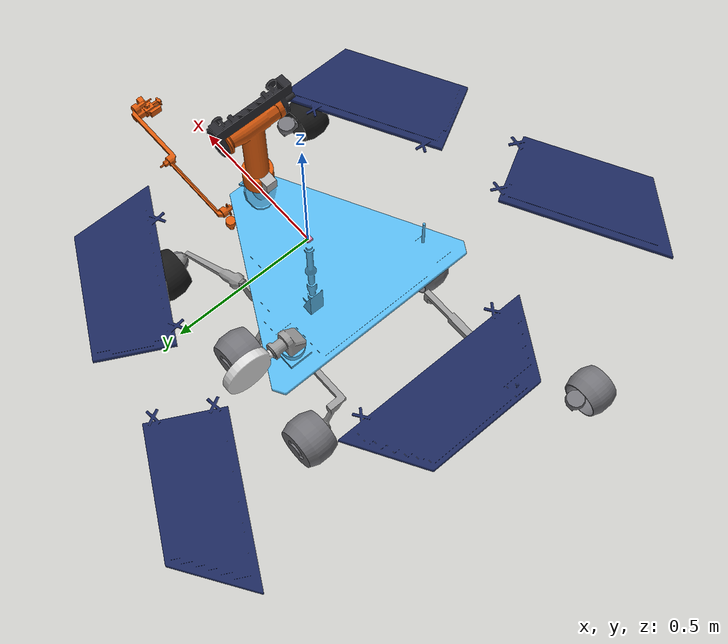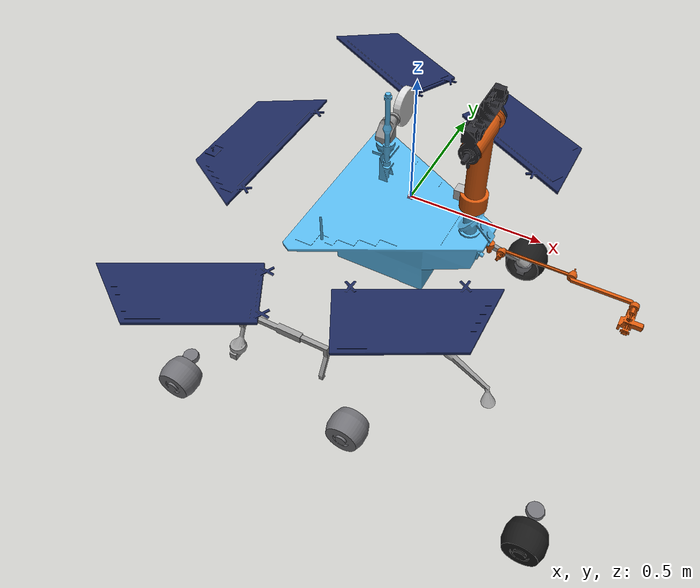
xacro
<?xml version="1.0"?>
<robot xmlns:xacro="http://ros.org/wiki/xacro"
       name="mars_opportunity_rover">

  <xacro:include filename="$(find rover_description)/urdf/common.xacro"/>

  <!-- Global Parameters -->

  <xacro:property name="scale_x"  value="0.68"/>
  <xacro:property name="scale_y"  value="0.68"/>
  <xacro:property name="scale_z"  value="0.68"/>

  <!-- ================= Mesh Path Parameters ================== -->

  <xacro:property name="body_box" value="package://rover_description/meshes/body_box.stl"/>

  <xacro:property name="head_j2" value="package://rover_description/meshes/head_j2.stl"/>
  <xacro:property name="head_j3" value="package://rover_description/meshes/head_j3.stl"/>

  <xacro:property name="front_left_panel" value="package://rover_description/meshes/front_left_panel.stl"/>
  <xacro:property name="rear_left_panel" value="package://rover_description/meshes/rear_left_panel.stl"/>
  <xacro:property name="front_right_panel" value="package://rover_description/meshes/front_right_panel.stl"/>
  <xacro:property name="rear_right_panel" value="package://rover_description/meshes/rear_right_panel.stl"/>
  <xacro:property name="rear_middle_panel" value="package://rover_description/meshes/rear_middle_panel.stl"/>

  <xacro:property name="arm_j1"  value="package://rover_description/meshes/arm_j1.stl"/>
  <xacro:property name="arm_j2"  value="package://rover_description/meshes/arm_j2.stl"/>
  <xacro:property name="arm_j3"  value="package://rover_description/meshes/arm_j3.stl"/>
  <xacro:property name="arm_j4"  value="package://rover_description/meshes/arm_j4.stl"/>
  <xacro:property name="arm_j5"  value="package://rover_description/meshes/arm_j5.stl"/>

  <xacro:property name="left_differential"  value="package://rover_description/meshes/left_differential.stl"/>
  <xacro:property name="left_bogie"  value="package://rover_description/meshes/left_bogie.stl"/>
  <xacro:property name="front_left_steering"  value="package://rover_description/meshes/front_left_steering.stl"/>
  <xacro:property name="front_left_wheel"  value="package://rover_description/meshes/front_left_wheel.stl"/>
  <xacro:property name="middle_left_wheel"  value="package://rover_description/meshes/middle_left_wheel.stl"/>
  <xacro:property name="rear_left_steering"  value="package://rover_description/meshes/rear_left_steering.stl"/>
  <xacro:property name="rear_left_wheel"  value="package://rover_description/meshes/rear_left_wheel.stl"/>

  <xacro:property name="right_differential"  value="package://rover_description/meshes/right_differential.stl"/>
  <xacro:property name="right_bogie"  value="package://rover_description/meshes/right_bogie.stl"/>
  <xacro:property name="front_right_steering"  value="package://rover_description/meshes/front_right_steering.stl"/>
  <xacro:property name="front_right_wheel"  value="package://rover_description/meshes/front_right_wheel.stl"/>
  <xacro:property name="middle_right_wheel"  value="package://rover_description/meshes/middle_right_wheel.stl"/>
  <xacro:property name="rear_right_steering"  value="package://rover_description/meshes/rear_right_steering.stl"/>
  <xacro:property name="rear_right_wheel"  value="package://rover_description/meshes/rear_right_wheel.stl"/>

  <xacro:property name="ant_j1"  value="package://rover_description/meshes/ant_j1.stl"/>
  <xacro:property name="ant_j2"  value="package://rover_description/meshes/ant_j2.stl"/>

  <!-- Misc -->
  <xacro:property name="encoder_cpr" value="1024"/>  <!-- counts per rev -->
  <xacro:property name="wheel_inertia" value="0.02"/>

  <!-- ===================== MATERIALS ===================== -->
  <!-- Original 3 -->
  <material name="grey"><color rgba="0.6 0.6 0.6 1.0"/></material>
  <material name="black"><color rgba="0.1 0.1 0.1 1.0"/></material>
  <material name="blue"><color rgba="0.1 0.1 0.8 1.0"/></material>

  <material name="arm_material"><color rgba="0.85 0.35 0.05 1.0"/></material>
  <material name="head_top_material"><color rgba="0.15 0.15 0.17 1.0"/></material>
  <material name="group_left_chassis_material"><color rgba="0.6 0.6 0.6 1.0"/></material>
  <material name="group_left_front_steering_material"><color rgba="0.45 0.45 0.47 1.0"/></material>
  <material name="group_left_wheel_material"><color rgba="0.1 0.1 0.1 1.0"/></material>
  <material name="left_bogie_material"><color rgba="0.6 0.6 0.6 1.0"/></material>
  <material name="group_left_middle_chariot_center_material"><color rgba="0.45 0.45 0.47 1.0"/></material>
  <material name="group_right_chassis_material"><color rgba="0.6 0.6 0.6 1.0"/></material>
  <material name="group_right_front_steering_material"><color rgba="0.45 0.45 0.47 1.0"/></material>
  <material name="group_right_wheel_material"><color rgba="0.1 0.1 0.1 1.0"/></material>
  <material name="right_bogie_material"><color rgba="0.6 0.6 0.6 1.0"/></material>
  <material name="group_right_middle_chariot_center_material"><color rgba="0.45 0.45 0.47 1.0"/></material>
  <material name="solar_panel_material"><color rgba="0.1 0.15 0.35 1.0"/></material>
  <material name="antenna_base_material"><color rgba="0.6 0.6 0.6 1.0"/></material>
  <material name="antenna_hg_material"><color rgba="0.85 0.85 0.85 1.0"/></material>

  <!-- Base Chassis with Mesh -->
  <link name="base_link"/>

  <joint name="base_to_body_box" type="fixed">
    <parent link="base_link"/>
    <child  link="body_box_link"/>
    <origin xyz="0 0 0" rpy="0 0 0"/>
  </joint>

  <link name="body_box_link">
    <visual>
      <origin xyz="0 0 0" rpy="0 0 0"/>
      <geometry>
        <mesh filename="${body_box}" scale="${scale_x} ${scale_y} ${scale_z}"/>
      </geometry>
    </visual>
    <collision>
      <origin xyz="0 0 0" rpy="0 0 0"/>
      <geometry><mesh filename="${body_box}"/></geometry>
    </collision>
    <inertial>
      <!-- Bounding-box approximation (mesh's real inertia depends on
           its actual shape, unknown until the mesh is supplied) -
           see common.xacro's box_inertia macro. -->
      <origin xyz="0 0 0"/>
      <mass value="14.0"/>
      <xacro:box_inertia mass="14.0" x="0.62" y="0.36" z="0.16"/>
    </inertial>
  </link>

  <!-- Head with Mesh -->

  <joint name="head_j2_joint" type="revolute">
    <parent link="body_box_link"/>
    <child  link="head_j2_link"/>
    <origin xyz="0.24 0 0" rpy="0 0 0"/>
    <axis xyz="0 0 1"/>
    <limit lower="-1.0" upper="1.0" effort="10" velocity="1.0"/>
  </joint>

  <transmission name="head_j2_transmission">
    <type>transmission_interface/SimpleTransmission</type>
    <joint name="head_j2_joint">
      <hardwareInterface>hardware_interface/PositionJointInterface</hardwareInterface>
    </joint>
    <actuator name="head_j2_motor">
      <hardwareInterface>hardware_interface/PositionJointInterface</hardwareInterface>
      <mechanicalReduction>1</mechanicalReduction>
    </actuator>
  </transmission>

  <link name="head_j2_link">
    <visual>
      <origin xyz="-0.24 0 0" rpy="0 0 0"/>
      <geometry>
        <mesh filename="${head_j2}" scale="${scale_x} ${scale_y} ${scale_z}"/>
      </geometry>
      <material name="arm_material"/>
    </visual>
    <collision>
      <origin xyz="0 0 0" rpy="0 0 0"/>
      <geometry><mesh filename="${head_j2}"/></geometry>
    </collision>
    <inertial>
      <mass value="0.3"/>
      <xacro:box_inertia mass="0.3" x="0.08" y="0.08" z="0.08"/>
    </inertial>
  </link>

  <joint name="head_j3_joint" type="revolute">
    <parent link="head_j2_link"/>
    <child  link="head_j3_link"/>
    <origin xyz="0 0 0.37" rpy="0 0 0"/>
    <axis xyz="0 1 0"/>
    <limit lower="-1.0" upper="1.0" effort="4" velocity="1.0"/>
  </joint>

  <transmission name="head_j3_transmission">
    <type>transmission_interface/SimpleTransmission</type>
    <joint name="head_j3_joint">
      <hardwareInterface>hardware_interface/PositionJointInterface</hardwareInterface>
    </joint>
    <actuator name="head_j3_motor">
      <hardwareInterface>hardware_interface/PositionJointInterface</hardwareInterface>
      <mechanicalReduction>1</mechanicalReduction>
    </actuator>
  </transmission>

  <link name="head_j3_link">
    <visual>
      <origin xyz="-0.24 0 -0.37" rpy="0 0 0"/>
      <geometry>
        <mesh filename="${head_j3}" scale="${scale_x} ${scale_y} ${scale_z}"/>
      </geometry>
      <material name="head_top_material"/>
    </visual>
    <collision>
      <origin xyz="0 0 0" rpy="0 0 0"/>
      <geometry><mesh filename="${head_j3}"/></geometry>
    </collision>
    <inertial>
      <mass value="0.2"/>
      <xacro:box_inertia mass="0.2" x="0.06" y="0.06" z="0.06"/>
    </inertial>
  </link>

  <!-- Group Differential Steering Wheels Left with Mesh -->

  <joint name="left_differential_joint" type="revolute">
    <parent link="body_box_link"/>
    <child  link="left_differential_link"/>
    <origin xyz="0.09 0 -0.265" rpy="0 0 0"/>
    <axis xyz="0 1 0"/>
    <limit lower="-0.2" upper="0.2" effort="10" velocity="1.0"/>
  </joint>

  <link name="left_differential_link">
    <visual>
      <origin xyz="-0.09 0 0.265" rpy="0 0 0"/>
      <geometry>
        <mesh filename="${left_differential}" scale="${scale_x} ${scale_y} ${scale_z}"/>
      </geometry>
      <material name="group_left_chassis_material"/>
    </visual>
    <collision>
      <origin xyz="0 0 0" rpy="0 0 0"/>
      <geometry><mesh filename="${left_differential}"/></geometry>
    </collision>
    <inertial>
      <mass value="0.5"/>
      <xacro:box_inertia mass="0.5" x="0.1" y="0.1" z="0.1"/>
    </inertial>
  </link>

  <joint name="front_left_steering_joint" type="revolute">
    <parent link="left_differential_link"/>
    <child  link="front_left_steering_link"/>
    <origin xyz="0.315 0.26 -0.14" rpy="0 0 0"/>
    <axis xyz="0 0 1"/>
    <limit lower="-0.3" upper="0.3" effort="10" velocity="1.0"/>
  </joint>

  <transmission name="front_left_steering_transmission">
    <type>transmission_interface/SimpleTransmission</type>
    <joint name="front_left_steering_joint">
      <hardwareInterface>hardware_interface/PositionJointInterface</hardwareInterface>
    </joint>
    <actuator name="front_left_steering_motor">
      <hardwareInterface>hardware_interface/PositionJointInterface</hardwareInterface>
      <mechanicalReduction>1</mechanicalReduction>
    </actuator>
  </transmission>

  <link name="front_left_steering_link">
    <visual>
      <origin xyz="-0.402 -0.258 0.404" rpy="0 0 0"/>
      <geometry>
        <mesh filename="${front_left_steering}" scale="${scale_x} ${scale_y} ${scale_z}"/>
      </geometry>
      <material name="group_left_front_steering_material"/>
    </visual>
    <collision>
      <origin xyz="0 0 0" rpy="0 0 0"/>
      <geometry><mesh filename="${front_left_steering}"/></geometry>
    </collision>
    <inertial>
      <mass value="0.3"/>
      <xacro:box_inertia mass="0.3" x="0.06" y="0.06" z="0.06"/>
    </inertial>
  </link>

  <joint name="front_left_wheel_joint" type="continuous">
    <parent link="front_left_steering_link"/>
    <child  link="front_left_wheel_link"/>
    <origin xyz="0 0.045 -0.033" rpy="0 0 0"/>
    <axis xyz="0 1 0"/>
  </joint>

  <transmission name="front_left_wheel_transmission">
    <type>transmission_interface/SimpleTransmission</type>
    <joint name="front_left_wheel_joint">
      <hardwareInterface>hardware_interface/PositionJointInterface</hardwareInterface>
    </joint>
    <actuator name="front_left_wheel_motor">
      <hardwareInterface>hardware_interface/PositionJointInterface</hardwareInterface>
      <mechanicalReduction>1</mechanicalReduction>
    </actuator>
  </transmission>

  <link name="front_left_wheel_link">
    <visual>
      <origin xyz="-0.409 -0.3 0.433" rpy="0 0 0"/>
      <geometry>
        <mesh filename="${front_left_wheel}" scale="${scale_x} ${scale_y} ${scale_z}"/>
      </geometry>
      <material name="group_left_wheel_material"/>
    </visual>
    <collision>
      <origin xyz="0 0 0" rpy="0 0 0"/>
      <geometry><mesh filename="${front_left_wheel}"/></geometry>
    </collision>
    <inertial>
      <mass value="1.1"/>
      <xacro:cylinder_inertia mass="1.1" radius="0.09" length="0.06"/>
    </inertial>
  </link>

  <joint name="left_bogie_joint" type="revolute">
    <parent link="left_differential_link"/>
    <child  link="left_bogie_link"/>
    <origin xyz="-0.265 0.195 -0.041" rpy="0 0 0"/>
    <axis xyz="0 1 0"/>
    <limit lower="-0.3" upper="0.3" effort="10" velocity="1.0"/>
  </joint>

  <transmission name="left_bogie_transmission">
    <type>transmission_interface/SimpleTransmission</type>
    <joint name="left_bogie_joint">
      <hardwareInterface>hardware_interface/PositionJointInterface</hardwareInterface>
    </joint>
    <actuator name="left_bogie_motor">
      <hardwareInterface>hardware_interface/PositionJointInterface</hardwareInterface>
      <mechanicalReduction>1</mechanicalReduction>
    </actuator>
  </transmission>

  <link name="left_bogie_link">
    <visual>
      <origin xyz="0.175 -0.190 0.308" rpy="0 0 0"/>
      <geometry>
        <mesh filename="${left_bogie}" scale="${scale_x} ${scale_y} ${scale_z}"/>
      </geometry>
      <material name="left_bogie_material"/>
    </visual>
    <collision>
      <origin xyz="0 0 0" rpy="0 0 0"/>
      <geometry><mesh filename="${left_bogie}"/></geometry>
    </collision>
    <inertial>
      <mass value="0.6"/>
      <xacro:box_inertia mass="0.6" x="0.15" y="0.08" z="0.08"/>
    </inertial>
  </link>

  <joint name="middle_left_wheel_joint" type="continuous">
    <parent link="left_bogie_link"/>
    <child  link="middle_left_wheel_link"/>
    <origin xyz="0.178 0.06 -0.13" rpy="0 0 0"/>
    <axis xyz="0 1 0"/>
  </joint>

  <transmission name="middle_left_wheel_transmission">
    <type>transmission_interface/SimpleTransmission</type>
    <joint name="middle_left_wheel_joint">
      <hardwareInterface>hardware_interface/PositionJointInterface</hardwareInterface>
    </joint>
    <actuator name="middle_left_wheel_motor">
      <hardwareInterface>hardware_interface/PositionJointInterface</hardwareInterface>
      <mechanicalReduction>1</mechanicalReduction>
    </actuator>
  </transmission>

  <link name="middle_left_wheel_link">
    <visual>
      <origin xyz="0 -0.22 0.435" rpy="0 0 0"/>
      <geometry>
        <mesh filename="${middle_left_wheel}" scale="${scale_x} ${scale_y} ${scale_z}"/>
      </geometry>
      <material name="group_left_middle_chariot_center_material"/>
    </visual>
    <collision>
      <origin xyz="0 0 0" rpy="0 0 0"/>
      <geometry><mesh filename="${middle_left_wheel}"/></geometry>
    </collision>
    <inertial>
      <mass value="1.1"/>
      <xacro:cylinder_inertia mass="1.1" radius="0.09" length="0.06"/>
    </inertial>
  </link>

  <joint name="rear_left_steering_joint" type="revolute">
    <parent link="left_bogie_link"/>
    <child  link="rear_left_steering_link"/>
    <origin xyz="-0.203 0.09 -0.1" rpy="0 0 0"/>
    <axis xyz="0 0 1"/>
    <limit lower="-0.3" upper="0.3" effort="10" velocity="1.0"/>
  </joint>

  <transmission name="rear_left_steering_transmission">
    <type>transmission_interface/SimpleTransmission</type>
    <joint name="rear_left_steering_joint">
      <hardwareInterface>hardware_interface/PositionJointInterface</hardwareInterface>
    </joint>
    <actuator name="rear_left_steering_motor">
      <hardwareInterface>hardware_interface/PositionJointInterface</hardwareInterface>
      <mechanicalReduction>1</mechanicalReduction>
    </actuator>
  </transmission>

  <link name="rear_left_steering_link">
    <visual>
      <origin xyz="0.38 -0.28 0.408" rpy="0 0 0"/>
      <geometry>
        <mesh filename="${rear_left_steering}" scale="${scale_x} ${scale_y} ${scale_z}"/>
      </geometry>
      <material name="group_left_middle_chariot_center_material"/>
    </visual>
    <collision>
      <origin xyz="0 0 0" rpy="0 0 0"/>
      <geometry><mesh filename="${rear_left_steering}"/></geometry>
    </collision>
    <inertial>
      <mass value="0.3"/>
      <xacro:box_inertia mass="0.3" x="0.06" y="0.06" z="0.06"/>
    </inertial>
  </link>

  <joint name="rear_left_wheel_joint" type="continuous">
    <parent link="rear_left_steering_link"/>
    <child  link="rear_left_wheel_link"/>
    <origin xyz="0 0.048 -0.025" rpy="0 0 0"/>
    <axis xyz="0 1 0"/>
  </joint>

  <transmission name="rear_left_wheel_transmission">
    <type>transmission_interface/SimpleTransmission</type>
    <joint name="rear_left_wheel_joint">
      <hardwareInterface>hardware_interface/PositionJointInterface</hardwareInterface>
    </joint>
    <actuator name="rear_left_wheel_motor">
      <hardwareInterface>hardware_interface/PositionJointInterface</hardwareInterface>
      <mechanicalReduction>1</mechanicalReduction>
    </actuator>
  </transmission>

  <link name="rear_left_wheel_link">
    <visual>
      <origin xyz="0.38 -0.32 0.44" rpy="0 0 0"/>
      <geometry>
        <mesh filename="${rear_left_wheel}" scale="${scale_x} ${scale_y} ${scale_z}"/>
      </geometry>
      <material name="group_left_middle_chariot_center_material"/>
    </visual>
    <collision>
      <origin xyz="0 0 0" rpy="0 0 0"/>
      <geometry><mesh filename="${rear_left_wheel}"/></geometry>
    </collision>
    <inertial>
      <mass value="1.1"/>
      <xacro:cylinder_inertia mass="1.1" radius="0.09" length="0.06"/>
    </inertial>
  </link>

  <!-- Group Differential Steering Wheels Right with Mesh -->

  <joint name="right_differential_joint" type="revolute">
    <parent link="body_box_link"/>
    <child  link="right_differential_link"/>
    <origin xyz="0.09 0 -0.265" rpy="0 0 0"/>
    <axis xyz="0 1 0"/>
    <limit lower="-0.2" upper="0.2" effort="10" velocity="1.0"/>
  </joint>

  <transmission name="right_differential_transmission">
    <type>transmission_interface/SimpleTransmission</type>
    <joint name="right_differential_joint">
      <hardwareInterface>hardware_interface/PositionJointInterface</hardwareInterface>
    </joint>
    <actuator name="right_differential_motor">
      <hardwareInterface>hardware_interface/PositionJointInterface</hardwareInterface>
      <mechanicalReduction>1</mechanicalReduction>
    </actuator>
  </transmission>

  <link name="right_differential_link">
    <visual>
      <origin xyz="0 0 0" rpy="0 0 0"/>
      <geometry>
        <mesh filename="${right_differential}" scale="${scale_x} ${scale_y} ${scale_z}"/>
      </geometry>
      <material name="group_right_chassis_material"/>
    </visual>
    <collision>
      <origin xyz="0 0 0" rpy="0 0 0"/>
      <geometry><mesh filename="${right_differential}"/></geometry>
    </collision>
    <inertial>
      <mass value="0.5"/>
      <xacro:box_inertia mass="0.5" x="0.1" y="0.1" z="0.1"/>
    </inertial>
  </link>

  <joint name="front_right_steering_joint" type="revolute">
    <parent link="right_differential_link"/>
    <child  link="front_right_steering_link"/>
    <origin xyz="0.315 -0.26 -0.14" rpy="0 0 0"/>
    <axis xyz="0 0 1"/>
    <limit lower="-0.3" upper="0.3" effort="10" velocity="1.0"/>
  </joint>

  <transmission name="front_right_steering_transmission">
    <type>transmission_interface/SimpleTransmission</type>
    <joint name="front_right_steering_joint">
      <hardwareInterface>hardware_interface/PositionJointInterface</hardwareInterface>
    </joint>
    <actuator name="front_right_steering_motor">
      <hardwareInterface>hardware_interface/PositionJointInterface</hardwareInterface>
      <mechanicalReduction>1</mechanicalReduction>
    </actuator>
  </transmission>

  <link name="front_right_steering_link">
    <visual>
      <origin xyz="0 0 0" rpy="0 0 0"/>
      <geometry>
        <mesh filename="${front_right_steering}" scale="${scale_x} ${scale_y} ${scale_z}"/>
      </geometry>
      <material name="group_right_front_steering_material"/>
    </visual>
    <collision>
      <origin xyz="0 0 0" rpy="0 0 0"/>
      <geometry><mesh filename="${front_right_steering}"/></geometry>
    </collision>
    <inertial>
      <mass value="0.3"/>
      <xacro:box_inertia mass="0.3" x="0.06" y="0.06" z="0.06"/>
    </inertial>
  </link>

  <joint name="front_right_wheel_joint" type="continuous">
    <parent link="front_right_steering_link"/>
    <child  link="front_right_wheel_link"/>
    <origin xyz="0 -0.045 -0.033" rpy="0 0 0"/>
    <axis xyz="0 1 0"/>
  </joint>

  <transmission name="front_right_wheel_transmission">
    <type>transmission_interface/SimpleTransmission</type>
    <joint name="front_right_wheel_joint">
      <hardwareInterface>hardware_interface/PositionJointInterface</hardwareInterface>
    </joint>
    <actuator name="front_right_wheel_motor">
      <hardwareInterface>hardware_interface/PositionJointInterface</hardwareInterface>
      <mechanicalReduction>1</mechanicalReduction>
    </actuator>
  </transmission>

  <link name="front_right_wheel_link">
    <visual>
      <origin xyz="0 0 0" rpy="0 0 0"/>
      <geometry>
        <mesh filename="${front_right_wheel}" scale="${scale_x} ${scale_y} ${scale_z}"/>
      </geometry>
      <material name="group_right_wheel_material"/>
    </visual>
    <collision>
      <origin xyz="0 0 0" rpy="0 0 0"/>
      <geometry><mesh filename="${front_right_wheel}"/></geometry>
    </collision>
    <inertial>
      <mass value="1.1"/>
      <xacro:cylinder_inertia mass="1.1" radius="0.09" length="0.06"/>
    </inertial>
  </link>

  <joint name="right_bogie_joint" type="revolute">
    <parent link="right_differential_link"/>
    <child  link="right_bogie_link"/>
    <origin xyz="-0.265 -0.195 -0.041" rpy="0 0 0"/>
    <axis xyz="0 1 0"/>
    <limit lower="-0.3" upper="0.3" effort="10" velocity="1.0"/>
  </joint>

  <transmission name="right_bogie_transmission">
    <type>transmission_interface/SimpleTransmission</type>
    <joint name="right_bogie_joint">
      <hardwareInterface>hardware_interface/PositionJointInterface</hardwareInterface>
    </joint>
    <actuator name="right_bogie_motor">
      <hardwareInterface>hardware_interface/PositionJointInterface</hardwareInterface>
      <mechanicalReduction>1</mechanicalReduction>
    </actuator>
  </transmission>

  <link name="right_bogie_link">
    <visual>
      <origin xyz="0 0 0" rpy="0 0 0"/>
      <geometry>
        <mesh filename="${right_bogie}" scale="${scale_x} ${scale_y} ${scale_z}"/>
      </geometry>
      <material name="right_bogie_material"/>
    </visual>
    <collision>
      <origin xyz="0 0 0" rpy="0 0 0"/>
      <geometry><mesh filename="${right_bogie}"/></geometry>
    </collision>
    <inertial>
      <mass value="0.6"/>
      <xacro:box_inertia mass="0.6" x="0.15" y="0.08" z="0.08"/>
    </inertial>
  </link>

  <joint name="middle_right_wheel_joint" type="continuous">
    <parent link="right_bogie_link"/>
    <child  link="middle_right_wheel_link"/>
    <origin xyz="0.178 -0.06 -0.13" rpy="0 0 0"/>
    <axis xyz="0 1 0"/>
  </joint>

  <transmission name="middle_right_wheel_transmission">
    <type>transmission_interface/SimpleTransmission</type>
    <joint name="middle_right_wheel_joint">
      <hardwareInterface>hardware_interface/PositionJointInterface</hardwareInterface>
    </joint>
    <actuator name="middle_right_wheel_motor">
      <hardwareInterface>hardware_interface/PositionJointInterface</hardwareInterface>
      <mechanicalReduction>1</mechanicalReduction>
    </actuator>
  </transmission>

  <link name="middle_right_wheel_link">
    <visual>
      <origin xyz="0 0 0" rpy="0 0 0"/>
      <geometry>
        <mesh filename="${middle_right_wheel}" scale="${scale_x} ${scale_y} ${scale_z}"/>
      </geometry>
      <material name="group_right_middle_chariot_center_material"/>
    </visual>
    <collision>
      <origin xyz="0 0 0" rpy="0 0 0"/>
      <geometry><mesh filename="${middle_right_wheel}"/></geometry>
    </collision>
    <inertial>
      <mass value="1.1"/>
      <xacro:cylinder_inertia mass="1.1" radius="0.09" length="0.06"/>
    </inertial>
  </link>

  <joint name="rear_right_steering_joint" type="revolute">
    <parent link="right_bogie_link"/>
    <child  link="rear_right_steering_link"/>
    <origin xyz="-0.203 -0.09 -0.1" rpy="0 0 0"/>
    <axis xyz="0 0 1"/>
    <limit lower="-0.3" upper="0.3" effort="10" velocity="1.0"/>
  </joint>

  <transmission name="rear_right_steering_transmission">
    <type>transmission_interface/SimpleTransmission</type>
    <joint name="rear_right_steering_joint">
      <hardwareInterface>hardware_interface/PositionJointInterface</hardwareInterface>
    </joint>
    <actuator name="rear_right_steering_motor">
      <hardwareInterface>hardware_interface/PositionJointInterface</hardwareInterface>
      <mechanicalReduction>1</mechanicalReduction>
    </actuator>
  </transmission>

  <link name="rear_right_steering_link">
    <visual>
      <origin xyz="0 0 0" rpy="0 0 0"/>
      <geometry>
        <mesh filename="${rear_right_steering}" scale="${scale_x} ${scale_y} ${scale_z}"/>
      </geometry>
      <material name="group_right_middle_chariot_center_material"/>
    </visual>
    <collision>
      <origin xyz="0 0 0" rpy="0 0 0"/>
      <geometry><mesh filename="${rear_right_steering}"/></geometry>
    </collision>
    <inertial>
      <mass value="0.3"/>
      <xacro:box_inertia mass="0.3" x="0.06" y="0.06" z="0.06"/>
    </inertial>
  </link>

  <joint name="rear_right_wheel_joint" type="continuous">
    <parent link="rear_right_steering_link"/>
    <child  link="rear_right_wheel_link"/>
    <origin xyz="0 -0.048 -0.025" rpy="0 0 0"/>
    <axis xyz="0 1 0"/>
  </joint>

  <transmission name="rear_right_wheel_transmission">
    <type>transmission_interface/SimpleTransmission</type>
    <joint name="rear_right_wheel_joint">
      <hardwareInterface>hardware_interface/PositionJointInterface</hardwareInterface>
    </joint>
    <actuator name="rear_right_wheel_motor">
      <hardwareInterface>hardware_interface/PositionJointInterface</hardwareInterface>
      <mechanicalReduction>1</mechanicalReduction>
    </actuator>
  </transmission>

  <link name="rear_right_wheel_link">
    <visual>
      <origin xyz="0 0 0" rpy="0 0 0"/>
      <geometry>
        <mesh filename="${rear_right_wheel}" scale="${scale_x} ${scale_y} ${scale_z}"/>
      </geometry>
      <material name="group_right_middle_chariot_center_material"/>
    </visual>
    <collision>
      <origin xyz="0 0 0" rpy="0 0 0"/>
      <geometry><mesh filename="${rear_right_wheel}"/></geometry>
    </collision>
    <inertial>
      <mass value="1.1"/>
      <xacro:cylinder_inertia mass="1.1" radius="0.09" length="0.06"/>
    </inertial>
  </link>

  <!-- Arm link with Meshes -->

  <joint name="arm_j1_joint" type="revolute">
    <parent link="body_box_link"/>
    <child  link="arm_j1_link"/>
    <origin xyz="0.3 0.09 -0.2" rpy="0 0 0"/>
    <axis xyz="0 0 1"/>
    <limit lower="-1.0" upper="1.0" effort="8" velocity="1.5"/>
  </joint>

  <link name="arm_j1_link">
    <visual>
      <origin xyz="-0.285 -0.095 0.2" rpy="0 0 0"/>
      <geometry>
        <mesh filename="${arm_j1}" scale="${scale_x} ${scale_y} ${scale_z}"/>
      </geometry>
      <material name="arm_material"/>
    </visual>
    <collision>
      <origin xyz="0 0 0" rpy="0 0 0"/>
      <geometry><mesh filename="${arm_j1}"/></geometry>
    </collision>
    <inertial>
      <mass value="0.4"/>
      <xacro:box_inertia mass="0.4" x="0.08" y="0.08" z="0.08"/>
    </inertial>
  </link>

  <joint name="arm_j2_joint" type="revolute">
    <parent link="arm_j1_link"/>
    <child  link="arm_j2_link"/>
    <origin xyz="0.05 0 -0.005" rpy="0 0 0"/>
    <axis xyz="0 1 0"/>
    <limit lower="-0.5" upper="1.0" effort="10" velocity="1.0"/>
  </joint>

  <link name="arm_j2_link">
    <visual>
      <origin xyz="-0.32 -0.095 0.205" rpy="0 0 0"/>
      <geometry>
        <mesh filename="${arm_j2}" scale="${scale_x} ${scale_y} ${scale_z}"/>
      </geometry>
      <material name="arm_material"/>
    </visual>
    <collision>
      <origin xyz="0 0 0" rpy="0 0 0"/>
      <geometry><mesh filename="${arm_j2}"/></geometry>
    </collision>
    <inertial>
      <mass value="0.5"/>
      <xacro:cylinder_inertia mass="0.5" radius="0.03" length="0.22"/>
    </inertial>
  </link>

  <joint name="arm_j3_joint" type="revolute">
    <parent link="arm_j2_link"/>
    <child  link="arm_j3_link"/>
    <origin xyz="0.275 0 0" rpy="0 0 0"/>
    <axis xyz="0 1 0"/>
    <limit lower="-1.57" upper="1.57" effort="10" velocity="1.0"/>
  </joint>

  <link name="arm_j3_link">
    <visual>
      <origin xyz="-0.575 -0.1 0.205" rpy="0 0 0"/>
      <geometry>
        <mesh filename="${arm_j3}" scale="${scale_x} ${scale_y} ${scale_z}"/>
      </geometry>
      <material name="arm_material"/>
    </visual>
    <collision>
      <origin xyz="0 0 0" rpy="0 0 0"/>
      <geometry><mesh filename="${arm_j3}"/></geometry>
    </collision>
    <inertial>
      <mass value="0.4"/>
      <xacro:cylinder_inertia mass="0.4" radius="0.025" length="0.20"/>
    </inertial>
  </link>

  <joint name="arm_j4_joint" type="revolute">
    <parent link="arm_j3_link"/>
    <child  link="arm_j4_link"/>
    <origin xyz="0.235 -0.021 0" rpy="0 0 0"/>
    <axis xyz="0 1 0"/>
    <limit lower="-1.57" upper="1.57" effort="4" velocity="1.5"/>
  </joint>

  <link name="arm_j4_link">
    <visual>
      <origin xyz="-0.8 -0.08 0.205" rpy="0 0 0"/>
      <geometry>
        <mesh filename="${arm_j4}" scale="${scale_x} ${scale_y} ${scale_z}"/>
      </geometry>
      <material name="arm_material"/>
    </visual>
    <collision>
      <origin xyz="0 0 0" rpy="0 0 0"/>
      <geometry><mesh filename="${arm_j4}"/></geometry>
    </collision>
    <inertial>
      <mass value="0.25"/>
      <xacro:cylinder_inertia mass="0.25" radius="0.02" length="0.09"/>
    </inertial>
  </link>

  <joint name="arm_j5_joint" type="revolute">
    <parent link="arm_j4_link"/>
    <child  link="arm_j5_link"/>
    <origin xyz="0 -0.06 0" rpy="0 0 0"/>
    <axis xyz="0 0 1"/>
    <limit lower="-1.57" upper="1.57" effort="3" velocity="2.0"/>
  </joint>

  <link name="arm_j5_link">
    <visual>
      <origin xyz="-0.8 0 0.205" rpy="0 0 0"/>
      <geometry>
        <mesh filename="${arm_j5}" scale="${scale_x} ${scale_y} ${scale_z}"/>
      </geometry>
      <material name="arm_material"/>
    </visual>
    <collision>
      <origin xyz="0 0 0" rpy="0 0 0"/>
      <geometry><mesh filename="${arm_j5}"/></geometry>
    </collision>
    <inertial>
      <mass value="0.15"/>
      <xacro:cylinder_inertia mass="0.15" radius="0.018" length="0.07"/>
    </inertial>
  </link>

  <transmission name="arm_j1_trans">
    <type>transmission_interface/SimpleTransmission</type>
    <joint name="arm_j1_joint"/>
    <actuator name="arm_j1_motor"/>
  </transmission>

  <transmission name="arm_j2_trans">
    <type>transmission_interface/SimpleTransmission</type>
    <joint name="arm_j2_joint"/>
    <actuator name="arm_j2_motor"/>
  </transmission>

  <transmission name="arm_j3_trans">
    <type>transmission_interface/SimpleTransmission</type>
    <joint name="arm_j3_joint"/>
    <actuator name="arm_j3_motor"/>
  </transmission>

  <transmission name="arm_j4_trans">
    <type>transmission_interface/SimpleTransmission</type>
    <joint name="arm_j4_joint"/>
    <actuator name="arm_j4_motor"/>
  </transmission>

  <transmission name="arm_j5_trans">
    <type>transmission_interface/SimpleTransmission</type>
    <joint name="arm_j5_joint"/>
    <actuator name="arm_j5_motor"/>
  </transmission>

  <!-- Solar Panels (static - not deployable/steerable) -->

  <joint name="front_left_panel_joint" type="fixed">
    <parent link="body_box_link"/>
    <child  link="front_left_panel_link"/>
    <origin xyz="0.12 0.20 0.08" rpy="0 0 0"/>
  </joint>

  <link name="front_left_panel_link">
    <visual>
      <origin xyz="0 0 0" rpy="0 0 0"/>
      <geometry>
        <mesh filename="${front_left_panel}" scale="${scale_x} ${scale_y} ${scale_z}"/>
      </geometry>
      <material name="solar_panel_material"/>
    </visual>
    <collision>
      <origin xyz="0 0 0" rpy="0 0 0"/>
      <geometry><mesh filename="${front_left_panel}"/></geometry>
    </collision>
    <inertial>
      <mass value="0.3"/>
      <xacro:box_inertia mass="0.3" x="0.22" y="0.14" z="0.008"/>
    </inertial>
  </link>

  <joint name="rear_left_panel_joint" type="fixed">
    <parent link="body_box_link"/>
    <child  link="rear_left_panel_link"/>
    <origin xyz="-0.12 0.20 0.08" rpy="0 0 0"/>
  </joint>

  <link name="rear_left_panel_link">
    <visual>
      <origin xyz="0 0 0" rpy="0 0 0"/>
      <geometry>
        <mesh filename="${rear_left_panel}" scale="${scale_x} ${scale_y} ${scale_z}"/>
      </geometry>
      <material name="solar_panel_material"/>
    </visual>
    <collision>
      <origin xyz="0 0 0" rpy="0 0 0"/>
      <geometry><mesh filename="${rear_left_panel}"/></geometry>
    </collision>
    <inertial>
      <mass value="0.3"/>
      <xacro:box_inertia mass="0.3" x="0.22" y="0.14" z="0.008"/>
    </inertial>
  </link>

  <joint name="front_right_panel_joint" type="fixed">
    <parent link="body_box_link"/>
    <child  link="front_right_panel_link"/>
    <origin xyz="0.12 -0.20 0.08" rpy="0 0 0"/>
  </joint>

  <link name="front_right_panel_link">
    <visual>
      <origin xyz="0 0 0" rpy="0 0 0"/>
      <geometry>
        <mesh filename="${front_right_panel}" scale="${scale_x} ${scale_y} ${scale_z}"/>
      </geometry>
      <material name="solar_panel_material"/>
    </visual>
    <collision>
      <origin xyz="0 0 0" rpy="0 0 0"/>
      <geometry><mesh filename="${front_right_panel}"/></geometry>
    </collision>
    <inertial>
      <mass value="0.3"/>
      <xacro:box_inertia mass="0.3" x="0.22" y="0.14" z="0.008"/>
    </inertial>
  </link>

  <joint name="rear_right_panel_joint" type="fixed">
    <parent link="body_box_link"/>
    <child  link="rear_right_panel_link"/>
    <origin xyz="-0.12 -0.20 0.08" rpy="0 0 0"/>
  </joint>

  <link name="rear_right_panel_link">
    <visual>
      <origin xyz="0 0 0" rpy="0 0 0"/>
      <geometry>
        <mesh filename="${rear_right_panel}" scale="${scale_x} ${scale_y} ${scale_z}"/>
      </geometry>
      <material name="solar_panel_material"/>
    </visual>
    <collision>
      <origin xyz="0 0 0" rpy="0 0 0"/>
      <geometry><mesh filename="${rear_right_panel}"/></geometry>
    </collision>
    <inertial>
      <mass value="0.3"/>
      <xacro:box_inertia mass="0.3" x="0.22" y="0.14" z="0.008"/>
    </inertial>
  </link>

  <joint name="rear_middle_panel_joint" type="fixed">
    <parent link="body_box_link"/>
    <child  link="rear_middle_panel_link"/>
    <origin xyz="-0.22 0 0.08" rpy="0 0 0"/>
  </joint>

  <link name="rear_middle_panel_link">
    <visual>
      <origin xyz="0 0 0" rpy="0 0 0"/>
      <geometry>
        <mesh filename="${rear_middle_panel}" scale="${scale_x} ${scale_y} ${scale_z}"/>
      </geometry>
      <material name="solar_panel_material"/>
    </visual>
    <collision>
      <origin xyz="0 0 0" rpy="0 0 0"/>
      <geometry><mesh filename="${rear_middle_panel}"/></geometry>
    </collision>
    <inertial>
      <mass value="0.15"/>
      <xacro:box_inertia mass="0.15" x="0.14" y="0.12" z="0.008"/>
    </inertial>
  </link>

  <!-- Sensors and additional components -->

  <!-- Antenna High Gain -->
  <joint name="ant_j1_joint" type="revolute">
    <parent link="body_box_link"/>
    <child  link="ant_j1_link"/>
    <origin xyz="-0.24 0.26 -0.02" rpy="0 0 0"/>
    <axis xyz="0 0 1"/>
    <limit lower="-0.5" upper="0.5" effort="1.0" velocity="1.0"/>
  </joint>

  <link name="ant_j1_link">
    <visual>
      <origin xyz="0.24 -0.26 0.02" rpy="0 0 0"/>
      <geometry>
        <mesh filename="${ant_j1}" scale="${scale_x} ${scale_y} ${scale_z}"/>
      </geometry>
      <material name="antenna_base_material"/>
    </visual>
    <collision>
      <origin xyz="0 0 0" rpy="0 0 0"/>
      <geometry><mesh filename="${ant_j1}"/></geometry>
    </collision>
    <inertial>
      <mass value="0.15"/>
      <xacro:cylinder_inertia mass="0.15" radius="0.02" length="0.06"/>
    </inertial>
  </link>

  <joint name="ant_j2_joint" type="revolute">
    <parent link="ant_j1_link"/>
    <child  link="ant_j2_link"/>
    <origin xyz="0 0.082 0.061" rpy="0 0 0"/>
    <axis xyz="0 1 0"/>
    <limit lower="-0.5" upper="0.5" effort="0.5" velocity="1.0"/>
  </joint>

  <link name="ant_j2_link">
    <visual>
      <origin xyz="0.24 -0.34 -0.042" rpy="0 0 0"/>
      <geometry>
        <mesh filename="${ant_j2}" scale="${scale_x} ${scale_y} ${scale_z}"/>
      </geometry>
      <material name="antenna_hg_material"/>
    </visual>
    <collision>
      <origin xyz="0 0 0" rpy="0 0 0"/>
      <geometry><mesh filename="${ant_j2}"/></geometry>
    </collision>
    <inertial>
      <mass value="0.1"/>
      <xacro:cylinder_inertia mass="0.1" radius="0.04" length="0.02"/>
    </inertial>
  </link>

  <!-- IMU link (attached to base) -->
  <link name="imu_link">
    <visual><origin xyz="0 0 0"/><geometry><box size="0.02 0.02 0.01"/></geometry></visual>
    <inertial><mass value="0.02"/><xacro:box_inertia mass="0.02" x="0.02" y="0.02" z="0.01"/></inertial>
  </link>

  <joint name="imu_joint" type="fixed">
    <parent link="body_box_link"/>
    <child link="imu_link"/>
    <origin xyz="0 0 0" rpy="0 0 0"/>
  </joint>

  <!-- Kinect RGB-D camera -->
  <link name="camera_link">
    <visual><origin xyz="0 0 0"/><geometry><box size="0.06 0.04 0.04"/></geometry></visual>
    <inertial><mass value="0.15"/><xacro:box_inertia mass="0.15" x="0.06" y="0.04" z="0.04"/></inertial>
  </link>

  <joint name="camera_mount" type="fixed">
    <parent link="body_box_link"/>
    <child link="camera_link"/>
    <origin xyz="0.2 0 0.1" rpy="0 0 0"/>
  </joint>

  <!-- Gazebo plugins -->
  <gazebo>
    <plugin name="gazebo_ros_control" filename="libgazebo_ros_drive.so">
      <ros>
        <remapping>cmd_vel:=cmd_vel</remapping>
      </ros>
      <updateRate>50</updateRate>
      <leftJoint>front_left_wheel_joint middle_left_wheel_joint rear_left_wheel_joint</leftJoint>
      <rightJoint>front_right_wheel_joint middle_right_wheel_joint rear_right_wheel_joint</rightJoint>
    </plugin>
  </gazebo>

  <gazebo reference="front_left_wheel_link"><mu1>1.2</mu1><mu2>1.2</mu2></gazebo>
  <gazebo reference="front_right_wheel_link"><mu1>1.2</mu1><mu2>1.2</mu2></gazebo>
  <gazebo reference="middle_left_wheel_link"><mu1>1.2</mu1><mu2>1.2</mu2></gazebo>
  <gazebo reference="middle_right_wheel_link"><mu1>1.2</mu1><mu2>1.2</mu2></gazebo>
  <gazebo reference="rear_left_wheel_link"><mu1>1.2</mu1><mu2>1.2</mu2></gazebo>
  <gazebo reference="rear_right_wheel_link"><mu1>1.2</mu1><mu2>1.2</mu2></gazebo>

</robot>

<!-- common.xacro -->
<robot xmlns:xacro="http://www.ros.org/wiki/xacro">

  <material name="chassis_grey">
    <color rgba="0.55 0.55 0.58 1.0"/>
  </material>
  <material name="wheel_black">
    <color rgba="0.08 0.08 0.08 1.0"/>
  </material>
  <material name="arm_orange">
    <color rgba="0.85 0.35 0.05 1.0"/>
  </material>
  <material name="mast_silver">
    <color rgba="0.75 0.75 0.78 1.0"/>
  </material>
  <material name="sensor_dark">
    <color rgba="0.15 0.15 0.17 1.0"/>
  </material>
  <material name="lens_glass">
    <color rgba="0.1 0.15 0.2 0.6"/>
  </material>
  <material name="solar_panel_blue">
    <color rgba="0.1 0.15 0.35 1.0"/>
  </material>
  <material name="antenna_hg_white">
    <color rgba="0.85 0.85 0.85 1.0"/>
  </material>

  <!-- Closed-form solid-box inertia about its own centroid. -->
  <xacro:macro name="box_inertia" params="mass x y z">
    <inertia
      ixx="${mass * (y*y + z*z) / 12.0}" ixy="0.0" ixz="0.0"
      iyy="${mass * (x*x + z*z) / 12.0}" iyz="0.0"
      izz="${mass * (x*x + y*y) / 12.0}"/>
  </xacro:macro>

  <!-- Closed-form solid-cylinder inertia about its own centroid, axis
       along the link's local Z (rotate the joint/link frame, not this
       macro, if the physical axis is X or Y). -->
  <xacro:macro name="cylinder_inertia" params="mass radius length">
    <inertia
      ixx="${mass * (3.0*radius*radius + length*length) / 12.0}" ixy="0.0" ixz="0.0"
      iyy="${mass * (3.0*radius*radius + length*length) / 12.0}" iyz="0.0"
      izz="${mass * radius*radius / 2.0}"/>
  </xacro:macro>

</robot>
